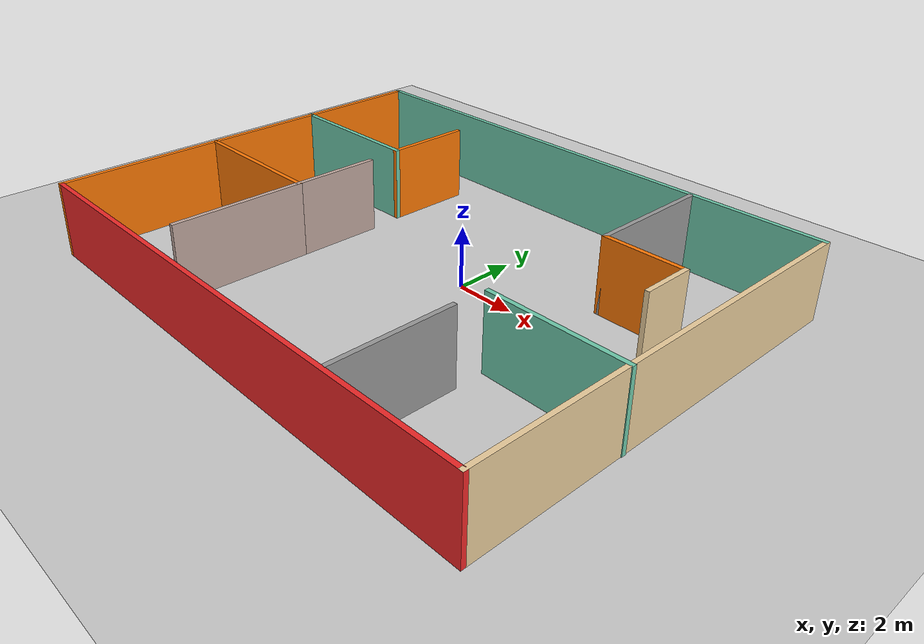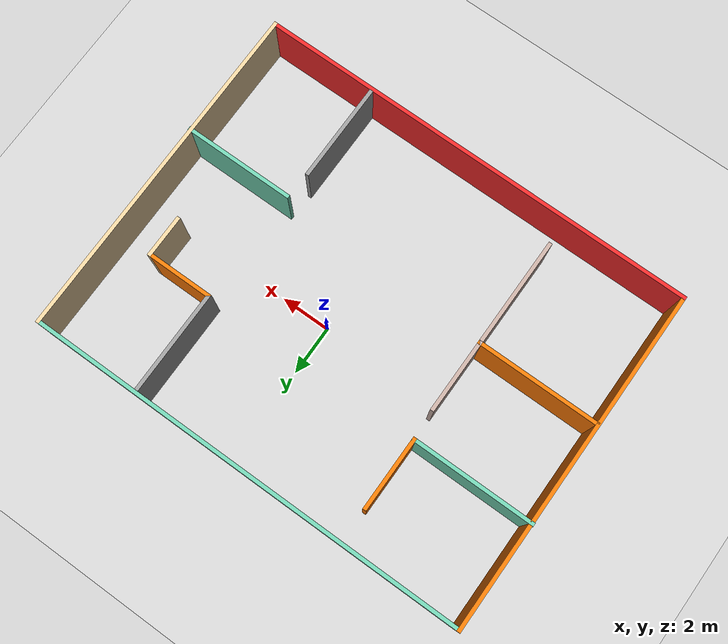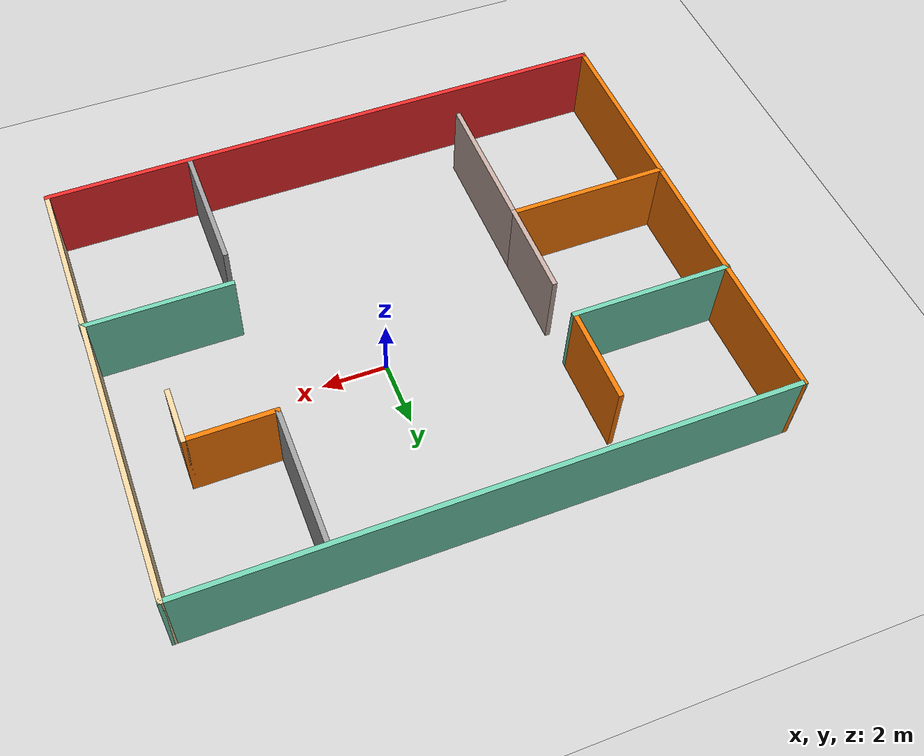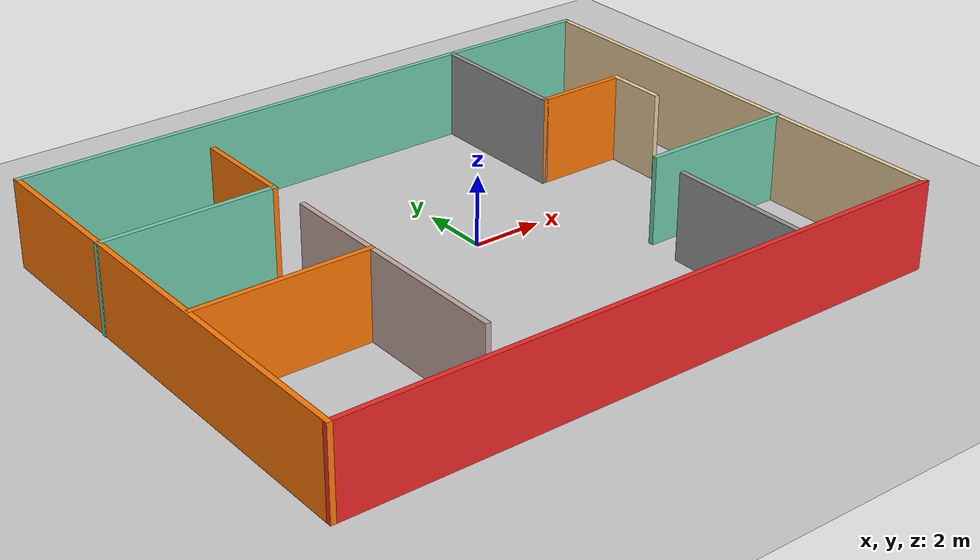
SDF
<sdf version="1.6">
 <world name="default">
  <light name="sun" type="directional">
   <pose>0 0 10 0 -0 0</pose>
   <diffuse>0.8 0.8 0.8 1</diffuse>
   <specular>0.2 0.2 0.2 1</specular>
   <attenuation>
    <range>1000</range>
    <constant>0.9</constant>
    <linear>0.01</linear>
    <quadratic>0.001</quadratic>
   </attenuation>
   <direction>-0.5 0.1 -0.9</direction>
  </light>
  <model name="ground_plane">
   <static>1</static>
   <link name="link">
    <collision name="collision">
     <geometry><plane><normal>0 0 1</normal><size>1000 1000</size></plane></geometry>
     <surface>
      <contact><collide_bitmask>65535</collide_bitmask></contact>
      <friction><ode><mu>100</mu><mu2>50</mu2></ode></friction>
     </surface>
    </collision>
    <visual name="visual">
     <cast_shadows>0</cast_shadows>
     <geometry><plane><normal>0 0 1</normal><size>1000 1000</size></plane></geometry>
     <material>
      <script><uri>file://media/materials/scripts/gazebo.material</uri><name>Gazebo/Grey</name></script>
     </material>
    </visual>
   </link>
  </model>
  <gravity>0 0 -9.8</gravity>
  <magnetic_field>6e-06 2.3e-05 -4.2e-05</magnetic_field>
  <atmosphere type="adiabatic"/>
  <physics name="default_physics" default="0" type="ode">
   <max_step_size>0.001</max_step_size>
   <real_time_factor>1</real_time_factor>
   <real_time_update_rate>1000</real_time_update_rate>
  </physics>
  <scene><ambient>0.4 0.4 0.4 1</ambient><background>0.7 0.7 0.7 1</background><shadows>1</shadows></scene>
  <audio><device>default</device></audio>
  <spherical_coordinates>
   <surface_model>EARTH_WGS84</surface_model>
   <latitude_deg>0</latitude_deg>
   <longitude_deg>0</longitude_deg>
   <elevation>0</elevation>
   <heading_deg>0</heading_deg>
  </spherical_coordinates>
  <model name="5roomtest">
   <pose>-0.914614 -0.899858 0 0 -0 0</pose>
   <link name="Wall_0">
    <collision name="Wall_0_Collision">
     <geometry><box><size>14 0.15 2.5</size></box></geometry>
     <pose>0 0 1.25 0 -0 0</pose>
    </collision>
    <visual name="Wall_0_Visual">
     <pose>0 0 1.25 0 -0 0</pose>
     <geometry><box><size>14 0.15 2.5</size></box></geometry>
     <material>
      <script><uri>file://media/materials/scripts/gazebo.material</uri><name>Gazebo/Grey</name></script>
      <ambient>0.996078 0.47451 0.0196078 1</ambient>
     </material>
     <meta><layer>0</layer></meta>
    </visual>
    <pose>-8.92451 0 0 0 -0 1.5708</pose>
   </link>
   <link name="Wall_1">
    <collision name="Wall_1_Collision">
     <geometry><box><size>18 0.15 2.5</size></box></geometry>
     <pose>0 0 1.25 0 -0 0</pose>
    </collision>
    <visual name="Wall_1_Visual">
     <pose>0 0 1.25 0 -0 0</pose>
     <geometry><box><size>18 0.15 2.5</size></box></geometry>
     <material>
      <script><uri>file://media/materials/scripts/gazebo.material</uri><name>Gazebo/Grey</name></script>
      <ambient>0.435294 0.796078 0.67451 1</ambient>
     </material>
     <meta><layer>0</layer></meta>
    </visual>
    <pose>0.000486 6.925 0 0 -0 0</pose>
   </link>
   <link name="Wall_10">
    <collision name="Wall_10_Collision">
     <geometry><box><size>1.75 0.15 2.5</size></box></geometry>
     <pose>0 0 1.25 0 -0 0</pose>
    </collision>
    <visual name="Wall_10_Visual">
     <pose>0 0 1.25 0 -0 0</pose>
     <geometry><box><size>1.75 0.15 2.5</size></box></geometry>
     <material>
      <script><uri>file://media/materials/scripts/gazebo.material</uri><name>Gazebo/Grey</name></script>
      <ambient>0.921569 0.807843 0.615686 1</ambient>
     </material>
     <meta><layer>0</layer></meta>
    </visual>
    <pose>7.25117 1.94267 0 0 -0 -1.5708</pose>
   </link>
   <link name="Wall_12">
    <collision name="Wall_12_Collision">
     <geometry><box><size>5 0.15 2.5</size></box></geometry>
     <pose>0 0 1.25 0 -0 0</pose>
    </collision>
    <visual name="Wall_12_Visual">
     <pose>0 0 1.25 0 -0 0</pose>
     <geometry><box><size>5 0.15 2.5</size></box></geometry>
     <material>
      <script><uri>file://media/materials/scripts/gazebo.material</uri><name>Gazebo/Grey</name></script>
      <ambient>0.996078 0.47451 0.0196078 1</ambient>
     </material>
     <meta><layer>0</layer></meta>
    </visual>
    <pose>-6.44615 -1.42676 0 0 -0 0</pose>
   </link>
   <link name="Wall_15">
    <collision name="Wall_15_Collision">
     <geometry><box><size>3 0.15 2.5</size></box></geometry>
     <pose>0 0 1.25 0 -0 0</pose>
    </collision>
    <visual name="Wall_15_Visual">
     <pose>0 0 1.25 0 -0 0</pose>
     <geometry><box><size>3 0.15 2.5</size></box></geometry>
     <material>
      <script><uri>file://media/materials/scripts/gazebo.material</uri><name>Gazebo/Grey</name></script>
      <ambient>0.760784 0.662745 0.627451 1</ambient>
     </material>
     <meta><layer>0</layer></meta>
    </visual>
    <pose>-4.02115 -0.001757 0 0 -0 1.5708</pose>
   </link>
   <link name="Wall_17">
    <collision name="Wall_17_Collision">
     <geometry><box><size>4.5 0.15 2.5</size></box></geometry>
     <pose>0 0 1.25 0 -0 0</pose>
    </collision>
    <visual name="Wall_17_Visual">
     <pose>0 0 1.25 0 -0 0</pose>
     <geometry><box><size>4.5 0.15 2.5</size></box></geometry>
     <material>
      <script><uri>file://media/materials/scripts/gazebo.material</uri><name>Gazebo/Grey</name></script>
      <ambient>0.760784 0.662745 0.627451 1</ambient>
     </material>
     <meta><layer>0</layer></meta>
    </visual>
    <pose>-4.02115 -3.60176 0 0 -0 -1.5708</pose>
   </link>
   <link name="Wall_19">
    <collision name="Wall_19_Collision">
     <geometry><box><size>4.5 0.15 2.5</size></box></geometry>
     <pose>0 0 1.25 0 -0 0</pose>
    </collision>
    <visual name="Wall_19_Visual">
     <pose>0 0 1.25 0 -0 0</pose>
     <geometry><box><size>4.5 0.15 2.5</size></box></geometry>
     <material>
      <script><uri>file://media/materials/scripts/gazebo.material</uri><name>Gazebo/Grey</name></script>
      <ambient>0.435294 0.796078 0.67451 1</ambient>
     </material>
     <meta><layer>0</layer></meta>
    </visual>
    <pose>6.77416 -1.81682 0 0 -0 0</pose>
   </link>
   <link name="Wall_2">
    <collision name="Wall_2_Collision">
     <geometry><box><size>14 0.15 2.5</size></box></geometry>
     <pose>0 0 1.25 0 -0 0</pose>
    </collision>
    <visual name="Wall_2_Visual">
     <pose>0 0 1.25 0 -0 0</pose>
     <geometry><box><size>14 0.15 2.5</size></box></geometry>
     <material>
      <script><uri>file://media/materials/scripts/gazebo.material</uri><name>Gazebo/Grey</name></script>
      <ambient>0.921569 0.807843 0.615686 1</ambient>
     </material>
     <meta><layer>0</layer></meta>
    </visual>
    <pose>8.92549 0 0 0 -0 -1.5708</pose>
   </link>
   <link name="Wall_21">
    <collision name="Wall_21_Collision">
     <geometry><box><size>4 0.15 2.5</size></box></geometry>
     <pose>0 0 1.25 0 -0 0</pose>
    </collision>
    <visual name="Wall_21_Visual">
     <pose>0 0 1.25 0 -0 0</pose>
     <geometry><box><size>4 0.15 2.5</size></box></geometry>
     <material>
      <script><uri>file://media/materials/scripts/gazebo.material</uri><name>Gazebo/Grey</name></script>
      <ambient>1 1 1 1</ambient>
     </material>
     <meta><layer>0</layer></meta>
    </visual>
    <pose>4.49515 -4.86002 0 0 -0 -1.5708</pose>
   </link>
   <link name="Wall_3">
    <collision name="Wall_3_Collision">
     <geometry><box><size>18 0.15 2.5</size></box></geometry>
     <pose>0 0 1.25 0 -0 0</pose>
    </collision>
    <visual name="Wall_3_Visual">
     <pose>0 0 1.25 0 -0 0</pose>
     <geometry><box><size>18 0.15 2.5</size></box></geometry>
     <material>
      <script><uri>file://media/materials/scripts/gazebo.material</uri><name>Gazebo/Grey</name></script>
      <ambient>0.937255 0.160784 0.160784 1</ambient>
     </material>
     <meta><layer>0</layer></meta>
    </visual>
    <pose>0.000486 -6.925 0 0 -0 3.14159</pose>
   </link>
   <link name="Wall_5">
    <collision name="Wall_5_Collision">
     <geometry><box><size>5 0.15 2.5</size></box></geometry>
     <pose>0 0 1.25 0 -0 0</pose>
    </collision>
    <visual name="Wall_5_Visual">
     <pose>0 0 1.25 0 -0 0</pose>
     <geometry><box><size>5 0.15 2.5</size></box></geometry>
     <material>
      <script><uri>file://media/materials/scripts/gazebo.material</uri><name>Gazebo/Grey</name></script>
      <ambient>0.435294 0.796078 0.67451 1</ambient>
     </material>
     <meta><layer>0</layer></meta>
    </visual>
    <pose>-6.52416 2.65595 0 0 -0 0</pose>
   </link>
   <link name="Wall_6">
    <collision name="Wall_6_Collision">
     <geometry><box><size>3 0.15 2.5</size></box></geometry>
     <pose>0 0 1.25 0 -0 0</pose>
    </collision>
    <visual name="Wall_6_Visual">
     <pose>0 0 1.25 0 -0 0</pose>
     <geometry><box><size>3 0.15 2.5</size></box></geometry>
     <material>
      <script><uri>file://media/materials/scripts/gazebo.material</uri><name>Gazebo/Grey</name></script>
      <ambient>0.996078 0.47451 0.0196078 1</ambient>
     </material>
     <meta><layer>0</layer></meta>
    </visual>
    <pose>-4.09917 4.08094 0 0 -0 1.5708</pose>
   </link>
   <link name="Wall_8">
    <collision name="Wall_8_Collision">
     <geometry><box><size>4.25 0.15 2.5</size></box></geometry>
     <pose>0 0 1.25 0 -0 0</pose>
    </collision>
    <visual name="Wall_8_Visual">
     <pose>0 0 1.25 0 -0 0</pose>
     <geometry><box><size>4.25 0.15 2.5</size></box></geometry>
     <material>
      <script><uri>file://media/materials/scripts/gazebo.material</uri><name>Gazebo/Grey</name></script>
      <ambient>1 1 1 1</ambient>
     </material>
     <meta><layer>0</layer></meta>
    </visual>
    <pose>4.65117 4.79267 0 0 -0 -1.5708</pose>
   </link>
   <link name="Wall_9">
    <collision name="Wall_9_Collision">
     <geometry><box><size>2.75 0.15 2.5</size></box></geometry>
     <pose>0 0 1.25 0 -0 0</pose>
    </collision>
    <visual name="Wall_9_Visual">
     <pose>0 0 1.25 0 -0 0</pose>
     <geometry><box><size>2.75 0.15 2.5</size></box></geometry>
     <material>
      <script><uri>file://media/materials/scripts/gazebo.material</uri><name>Gazebo/Grey</name></script>
      <ambient>0.996078 0.47451 0.0196078 1</ambient>
     </material>
     <meta><layer>0</layer></meta>
    </visual>
    <pose>5.95117 2.74267 0 0 -0 0</pose>
   </link>
   <static>1</static>
  </model>
 </world>
</sdf>
